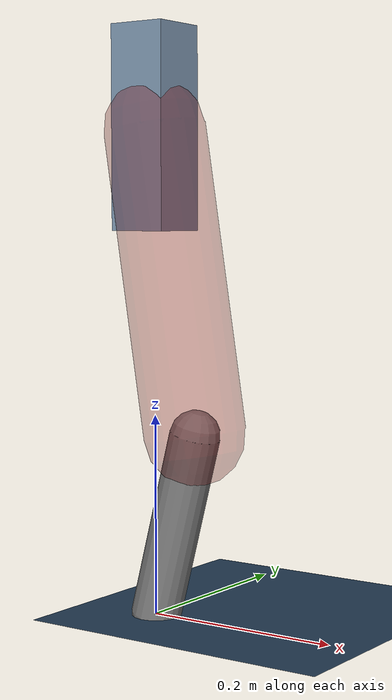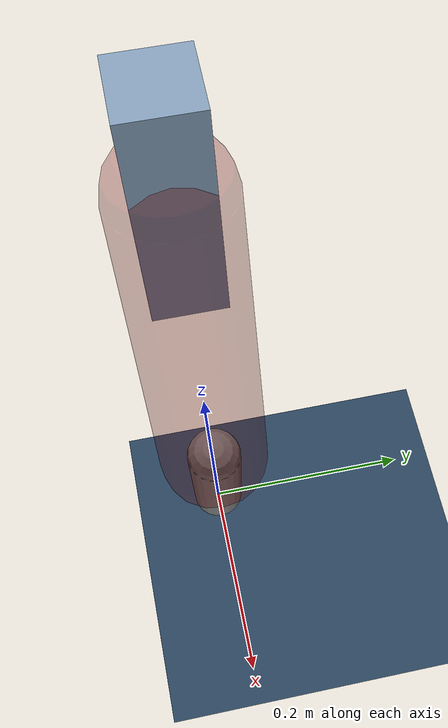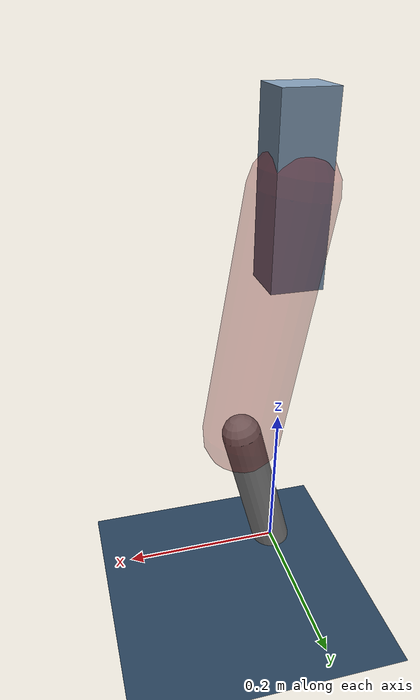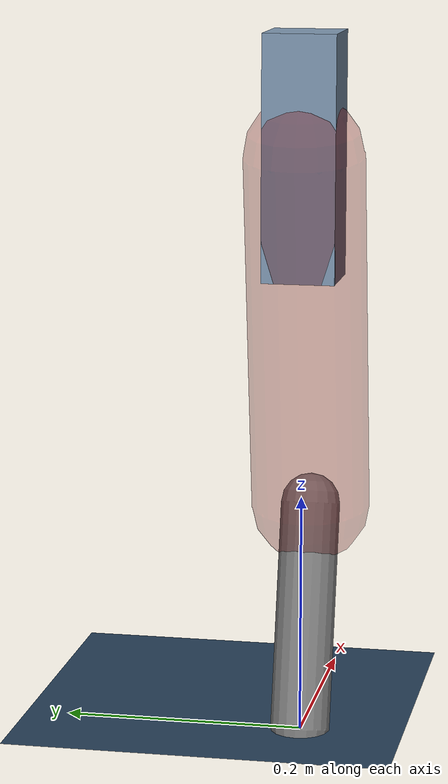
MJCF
<mujoco model="Hopper2D">
	<compiler inertiafromgeom="true" angle="radian" />
	<option timestep="0.001" integrator="implicit" cone="elliptic" solver="Newton" tolerance="1e-10" />

	<default>
		<geom contype="1" conaffinity="1" condim="3" friction="2 0.005 0.0001" solref="0.005 1" />
		<joint limited="true" damping="0.1" />
	</default>

	<asset>
		<texture name="skybox" type="skybox" builtin="gradient" rgb1=".4 .6 .8" rgb2="0 0 0" width="800" height="800" />
		<texture name="grid" type="2d" builtin="checker" rgb1=".1 .2 .3" rgb2=".2 .3 .4" width="300" height="300" mark="edge" markrgb=".2 .3 .4" />
		<material name="ground" texture="grid" texrepeat="1 1" texuniform="true" reflectance="0.1" />
		<material name="leg" rgba="0.5 0.6 0.7 1" />
	</asset>

	<worldbody>

		<geom name="floor" type="plane" size="5 5 0.25" material="ground" />

		<light directional="false" diffuse="0.8 0.8 0.8" specular="0.3 0.3 0.3" pos="0 0 2" dir="0 0 -1" />
		<light mode="targetbodycom" target="base" directional="false" diffuse="0.8 0.8 0.8" specular="0.3 0.3 0.3" pos="0 0 2" dir="0 0 -1" />

		<camera name="fixed" pos="0 -2 1" xyaxes="1 0 0 0 0 1" />
		<camera name="tracking" mode="trackcom" pos="0 -3 1" />

		<body name="root" pos="0 0 0.4825285084076839">
			<joint name="slide_x" type="slide" axis="1 0 0" range="-100 100" />
			<joint name="slide_z" type="slide" axis="0 0 1" range="0 10" />

			<body name="base" pos="0 0 0">
				<geom name="torso" type="box" size="0.03 0.03 0.1" mass="2.802" material="leg" />

				<body name="link1" pos="0 0 0" euler="0 1.4114537792922208 0">
					<joint type="hinge" axis="0 -1 0" pos="0 0 0" name="hinge1" limited="true" range="-3.14 3.14" stiffness="0" damping="0.1" />
					<geom name="thigh" type="capsule" fromto="0 0 0 0.30257291963719696 0 0" size="0.05" rgba="0.5 0 0 0.3" mass="0.9957041749841515" />

					<body name="link2" pos="0.30257291963719696 0 0" euler="0 0.41485153824996457 0">
						<joint type="hinge" axis="0 -1 0" pos="0 0 0" name="hinge2" limited="true" range="-3.14 3.14" stiffness="0" damping="0.1" />
						<geom name="shank" type="capsule" fromto="0 0 0 0.18995558877048693 0 0" size="0.025" mass="0.39236447101638955" />

					</body>
				</body>
			</body>
		</body>
	</worldbody>

	<actuator>
		<motor name="torque1" joint="hinge1" ctrlrange="-129.46217824596022 129.46217824596022" ctrllimited="true" gear="1" />
		<motor name="torque2" joint="hinge2" ctrlrange="-106.30601291872543 106.30601291872543" ctrllimited="true" gear="1" />
	</actuator>
</mujoco>
